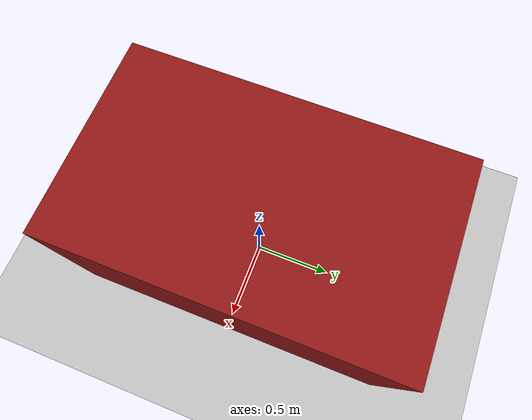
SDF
<?xml version="1.0" ?>
<sdf version="1.6">
  <world name="swarm_world">
    <include><uri>model://sun</uri></include>
    <include><uri>model://ground_plane</uri></include>

    <!-- Moving target (visualized as a box) -->
    <model name="target_box">
      <pose>0 0 0 0 0 0</pose>
      <link name="link">
        <pose>0 0 0.5 0 0 0</pose>
        <collision name="collision">
          <geometry><box><size>1.2 2.0 1.0</size></box></geometry>
        </collision>
        <visual name="visual">
          <geometry><box><size>1.2 2.0 1.0</size></box></geometry>
          <material><ambient>0.6 0.1 0.1 1</ambient></material>
        </visual>
      </link>
    </model>

  </world>
</sdf>
